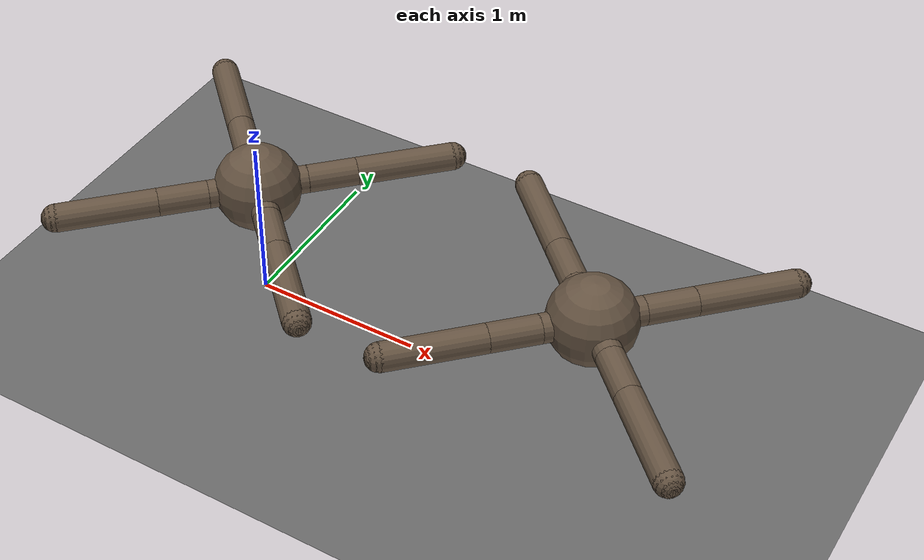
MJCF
<mujoco model="ant">
  <compiler angle="degree" coordinate="local" inertiafromgeom="true"/>
  <option timestep="0.02" iterations="4" />
  <custom>
    <!-- brax custom params -->
    <numeric data="0.0 0.0 0.55 1.0 0.0 0.0 0.0 0.0 1.0 0.0 -1.0 0.0 -1.0 0.0 1.0 1.0 0.0 0.55 1.0 0.0 0.0 0.0 0.0 1.0 0.0 -1.0 0.0 -1.0 0.0 1.0" name="init_qpos"/>
    <numeric data="1000" name="constraint_limit_stiffness"/>
    <numeric data="4000" name="constraint_stiffness"/>
    <numeric data="10" name="constraint_ang_damping"/>
    <numeric data="20" name="constraint_vel_damping"/>
    <numeric data="0.5" name="joint_scale_pos"/>
    <numeric data="0.2" name="joint_scale_ang"/>
    <numeric data="0.0" name="ang_damping"/>
    <numeric data="1" name="spring_mass_scale"/>
    <numeric data="1" name="spring_inertia_scale"/>
    <numeric data="15" name="solver_maxls"/>
  </custom>
  <default>
    <joint armature="1" damping="1" limited="true"/>
    <geom contype="0" conaffinity="0" condim="3" density="5.0" friction="1 0.5 0.5"
     rgba="0.4 0.33 0.26 1.0"/>
  </default>
  <asset>
    <texture builtin="gradient" height="100" rgb1="1 1 1" rgb2="0 0 0" type="skybox" width="100"/>
    <texture builtin="flat" height="1278" mark="cross" markrgb="1 1 1" name="texgeom" random="0.01" rgb1="0.8 0.6 0.4" rgb2="0.8 0.6 0.4" type="cube" width="127"/>
    <texture builtin="checker" height="100" name="texplane" rgb1="0 0 0" rgb2="0.8 0.8 0.8" type="2d" width="100"/>
    <material name="MatPlane" reflectance="0.5" shininess="1" specular="1" texrepeat="60 60" texture="texplane"/>
    <material name="geom" texture="texgeom" texuniform="true"/>
    <material name="red" rgba="1 0 0 0.5"/>
    <material name="blue" rgba="0 0 1 0.5"/>
  </asset>
  <worldbody>
    <light cutoff="100" diffuse="1 1 1" dir="-0 0 -1.3" directional="true" exponent="1" pos="0 0 1.3" specular=".1 .1 .1"/>
    <geom conaffinity="1" condim="3" material="MatPlane" name="floor" pos="0 0 0" size="40 40 40" type="plane" rgba="0.5 0.5 0.5 1.0"/>

    <body name="torso_a_1" pos="0 0 0.75">
      <camera name="track_a_1" mode="trackcom" pos="0 -3 0.3" xyaxes="1 0 0 0 0 1"/>
      <geom name="torso_geom_a_1" pos="0 0 0" size="0.25" type="sphere" material="red"/>
      <joint armature="0" damping="0" limited="false" margin="0.01" name="root_a_1" pos="0 0 0" type="free"/>
      <body name="front_left_leg_a_1" pos="0 0 0">
        <geom fromto="0.0 0.0 0.0 0.2 0.2 0.0" name="aux_1_geom_a_1" size="0.08" type="capsule" material="red"/>
        <body name="aux_1_a_1" pos="0.2 0.2 0">
          <joint axis="0 0 1" name="hip_1_a_1" pos="0.0 0.0 0.0" range="-30 30" type="hinge"/>
          <geom fromto="0.0 0.0 0.0 0.2 0.2 0.0" name="left_leg_geom_a_1" size="0.08" type="capsule" material="red"/>
          <body pos="0.2 0.2 0">
            <joint axis="-1 1 0" name="ankle_1_a_1" pos="0.0 0.0 0.0" range="30 70" type="hinge"/>
            <geom fromto="0.0 0.0 0.0 0.4 0.4 0.0" name="left_ankle_geom_a_1" size="0.08" type="capsule"/>
            <geom name="left_foot_geom_a_1" contype="1" pos="0.4 0.4 0" size="0.08" type="sphere" mass="0"/>
          </body>
        </body>
      </body>
      <body name="front_right_leg_a_1" pos="0 0 0">
        <geom fromto="0.0 0.0 0.0 -0.2 0.2 0.0" name="aux_2_geom_a_1" size="0.08" type="capsule"/>
        <body name="aux_2_a_1" pos="-0.2 0.2 0">
          <joint axis="0 0 1" name="hip_2_a_1" pos="0.0 0.0 0.0" range="-30 30" type="hinge"/>
          <geom fromto="0.0 0.0 0.0 -0.2 0.2 0.0" name="right_leg_geom_a_1" size="0.08" type="capsule"/>
          <body pos="-0.2 0.2 0">
            <joint axis="1 1 0" name="ankle_2_a_1" pos="0.0 0.0 0.0" range="-70 -30" type="hinge"/>
            <geom fromto="0.0 0.0 0.0 -0.4 0.4 0.0" name="right_ankle_geom_a_1" size="0.08" type="capsule"/>
            <geom name="right_foot_geom_a_1" contype="1" pos="-0.4 0.4 0" size="0.08" type="sphere" mass="0"/>
          </body>
        </body>
      </body>
      <body name="back_leg_a_1" pos="0 0 0">
        <geom fromto="0.0 0.0 0.0 -0.2 -0.2 0.0" name="aux_3_geom_a_1" size="0.08" type="capsule"/>
        <body name="aux_3_a_1" pos="-0.2 -0.2 0">
          <joint axis="0 0 1" name="hip_3_a_1" pos="0.0 0.0 0.0" range="-30 30" type="hinge"/>
          <geom fromto="0.0 0.0 0.0 -0.2 -0.2 0.0" name="back_leg_geom_a_1" size="0.08" type="capsule"/>
          <body pos="-0.2 -0.2 0">
            <joint axis="-1 1 0" name="ankle_3_a_1" pos="0.0 0.0 0.0" range="-70 -30" type="hinge"/>
            <geom fromto="0.0 0.0 0.0 -0.4 -0.4 0.0" name="third_ankle_geom_a_1" size="0.08" type="capsule"/>
            <geom name="third_foot_geom_a_1" contype="1" pos="-0.4 -0.4 0" size="0.08" type="sphere" mass="0"/>
          </body>
        </body>
      </body>
      <body name="right_back_leg_a_1" pos="0 0 0">
        <geom fromto="0.0 0.0 0.0 0.2 -0.2 0.0" name="aux_4_geom_a_1" size="0.08" type="capsule"/>
        <body name="aux_4_a_1" pos="0.2 -0.2 0">
          <joint axis="0 0 1" name="hip_4_a_1" pos="0.0 0.0 0.0" range="-30 30" type="hinge"/>
          <geom fromto="0.0 0.0 0.0 0.2 -0.2 0.0" name="rightback_leg_geom_a_1" size="0.08" type="capsule"/>
          <body pos="0.2 -0.2 0">
            <joint axis="1 1 0" name="ankle_4_a_1" pos="0.0 0.0 0.0" range="30 70" type="hinge"/>
            <geom fromto="0.0 0.0 0.0 0.4 -0.4 0.0" name="fourth_ankle_geom_a_1" size="0.08" type="capsule"/>
            <geom name="fourth_foot_geom_a_1" contype="1" pos="0.4 -0.4 0" size="0.08" type="sphere" mass="0"/>
          </body>
        </body>
      </body>
    </body>

    <body name="torso_a_2" pos="2.1 0 0.75">
      <camera name="track_a_2" mode="trackcom" pos="0 -3 0.3" xyaxes="1 0 0 0 0 1"/>
      <geom name="torso_geom_a_2" pos="0 0 0" size="0.25" type="sphere" material="blue"/>
      <joint armature="0" damping="0" limited="false" margin="0.01" name="root_a_2" pos="0 0 0" type="free"/>

      <body name="front_left_leg_a_2" pos="0 0 0">
        <geom fromto="0.0 0.0 0.0 0.2 0.2 0.0" name="aux_1_geom_a_2" size="0.08" type="capsule"/>
        <body name="aux_1_a_2" pos="0.2 0.2 0">
          <joint axis="0 0 1" name="hip_1_a_2" pos="0.0 0.0 0.0" range="-30 30" type="hinge"/>
          <geom fromto="0.0 0.0 0.0 0.2 0.2 0.0" name="left_leg_geom_a_2" size="0.08" type="capsule"/>
          <body pos="0.2 0.2 0">
            <joint axis="-1 1 0" name="ankle_1_a_2" pos="0.0 0.0 0.0" range="30 70" type="hinge"/>
            <geom fromto="0.0 0.0 0.0 0.4 0.4 0.0" name="left_ankle_geom_a_2" size="0.08" type="capsule"/>
            <geom name="left_foot_geom_a_2" contype="1" pos="0.4 0.4 0" size="0.08" type="sphere" mass="0"/>
          </body>
        </body>
      </body>

      <body name="front_right_leg_a_2" pos="0 0 0">
        <geom fromto="0.0 0.0 0.0 -0.2 0.2 0.0" name="aux_2_geom_a_2" size="0.08" type="capsule"/>
        <body name="aux_2_a_2" pos="-0.2 0.2 0">
          <joint axis="0 0 1" name="hip_2_a_2" pos="0.0 0.0 0.0" range="-30 30" type="hinge"/>
          <geom fromto="0.0 0.0 0.0 -0.2 0.2 0.0" name="right_leg_geom_a_2" size="0.08" type="capsule"/>
          <body pos="-0.2 0.2 0">
            <joint axis="1 1 0" name="ankle_2_a_2" pos="0.0 0.0 0.0" range="-70 -30" type="hinge"/>
            <geom fromto="0.0 0.0 0.0 -0.4 0.4 0.0" name="right_ankle_geom_a_2" size="0.08" type="capsule"/>
            <geom name="right_foot_geom_a_2" contype="1" pos="-0.4 0.4 0" size="0.08" type="sphere" mass="0"/>
          </body>
        </body>
      </body>

      <body name="back_leg_a_2" pos="0 0 0">
        <geom fromto="0.0 0.0 0.0 -0.2 -0.2 0.0" name="aux_3_geom_a_2" size="0.08" type="capsule"/>
        <body name="aux_3_a_2" pos="-0.2 -0.2 0">
          <joint axis="0 0 1" name="hip_3_a_2" pos="0.0 0.0 0.0" range="-30 30" type="hinge"/>
          <geom fromto="0.0 0.0 0.0 -0.2 -0.2 0.0" name="back_leg_geom_a_2" size="0.08" type="capsule"/>
          <body pos="-0.2 -0.2 0">
            <joint axis="-1 1 0" name="ankle_3_a_2" pos="0.0 0.0 0.0" range="-70 -30" type="hinge"/>
            <geom fromto="0.0 0.0 0.0 -0.4 -0.4 0.0" name="third_ankle_geom_a_2" size="0.08" type="capsule"/>
            <geom name="third_foot_geom_a_2" contype="1" pos="-0.4 -0.4 0" size="0.08" type="sphere" mass="0"/>
          </body>
        </body>
      </body>

      <body name="right_back_leg_a_2" pos="0 0 0">
        <geom fromto="0.0 0.0 0.0 0.2 -0.2 0.0" name="aux_4_geom_a_2" size="0.08" type="capsule"/>
        <body name="aux_4_a_2" pos="0.2 -0.2 0">
          <joint axis="0 0 1" name="hip_4_a_2" pos="0.0 0.0 0.0" range="-30 30" type="hinge"/>
          <geom fromto="0.0 0.0 0.0 0.2 -0.2 0.0" name="rightback_leg_geom_a_2" size="0.08" type="capsule"/>
          <body pos="0.2 -0.2 0">
            <joint axis="1 1 0" name="ankle_4_a_2" pos="0.0 0.0 0.0" range="30 70" type="hinge"/>
            <geom fromto="0.0 0.0 0.0 0.4 -0.4 0.0" name="fourth_ankle_geom_a_2" size="0.08" type="capsule"/>
            <geom name="fourth_foot_geom_a_2" contype="1" pos="0.4 -0.4 0" size="0.08" type="sphere" mass="0"/>
          </body>
        </body>
      </body>

    </body>
  </worldbody>
  <actuator>
    <motor ctrllimited="true" ctrlrange="-1.0 1.0" joint="hip_4_a_1" gear="150"/>
    <motor ctrllimited="true" ctrlrange="-1.0 1.0" joint="hip_4_a_2" gear="150"/>
    <motor ctrllimited="true" ctrlrange="-1.0 1.0" joint="ankle_4_a_1" gear="150"/>
    <motor ctrllimited="true" ctrlrange="-1.0 1.0" joint="ankle_4_a_2" gear="150"/>
    <motor ctrllimited="true" ctrlrange="-1.0 1.0" joint="hip_1_a_1" gear="150"/>
    <motor ctrllimited="true" ctrlrange="-1.0 1.0" joint="hip_1_a_2" gear="150"/>
    <motor ctrllimited="true" ctrlrange="-1.0 1.0" joint="ankle_1_a_1" gear="150"/>
    <motor ctrllimited="true" ctrlrange="-1.0 1.0" joint="ankle_1_a_2" gear="150"/>
    <motor ctrllimited="true" ctrlrange="-1.0 1.0" joint="hip_2_a_1" gear="150"/>
    <motor ctrllimited="true" ctrlrange="-1.0 1.0" joint="hip_2_a_2" gear="150"/>
    <motor ctrllimited="true" ctrlrange="-1.0 1.0" joint="ankle_2_a_1" gear="150"/>
    <motor ctrllimited="true" ctrlrange="-1.0 1.0" joint="ankle_2_a_2" gear="150"/>
    <motor ctrllimited="true" ctrlrange="-1.0 1.0" joint="hip_3_a_1" gear="150"/>
    <motor ctrllimited="true" ctrlrange="-1.0 1.0" joint="hip_3_a_2" gear="150"/>
    <motor ctrllimited="true" ctrlrange="-1.0 1.0" joint="ankle_3_a_1" gear="150"/>
    <motor ctrllimited="true" ctrlrange="-1.0 1.0" joint="ankle_3_a_2" gear="150"/>
  </actuator>
</mujoco>
